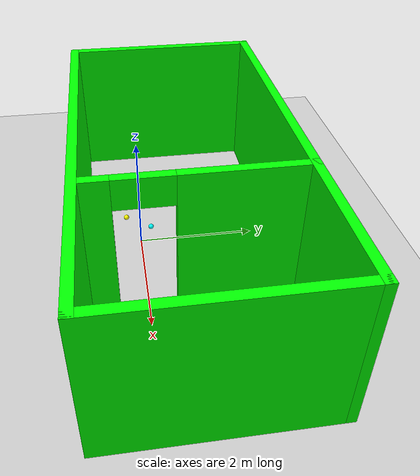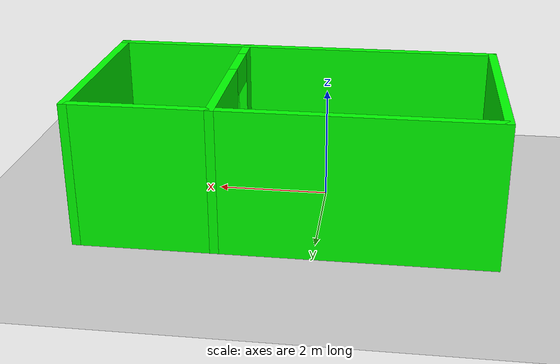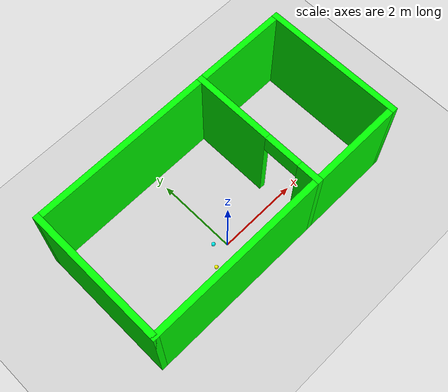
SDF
<sdf version="1.7">
 <world name="default">
  <light name="sun" type="directional">
   <pose>0 0 10 0 -0 0</pose>
   <diffuse>0.8 0.8 0.8 1</diffuse>
   <specular>0.2 0.2 0.2 1</specular>
   <attenuation>
    <range>1000</range>
    <constant>0.9</constant>
    <linear>0.01</linear>
    <quadratic>0.001</quadratic>
   </attenuation>
   <direction>-0.5 0.1 -0.9</direction>
   <spot><inner_angle>0</inner_angle><outer_angle>0</outer_angle><falloff>0</falloff></spot>
  </light>
  <model name="ground_plane">
   <static>1</static>
   <link name="link">
    <collision name="collision">
     <geometry><plane><normal>0 0 1</normal><size>100 100</size></plane></geometry>
     <surface>
      <contact><collide_bitmask>65535</collide_bitmask></contact>
      <friction><ode><mu>100</mu><mu2>50</mu2></ode></friction>
     </surface>
    </collision>
    <visual name="visual">
     <cast_shadows>0</cast_shadows>
     <geometry><plane><normal>0 0 1</normal><size>100 100</size></plane></geometry>
     <material>
      <script><uri>file://media/materials/scripts/gazebo.material</uri><name>Gazebo/Grey</name></script>
     </material>
    </visual>
   </link>
  </model>
  <gravity>0 0 -9.8</gravity>
  <magnetic_field>6e-06 2.3e-05 -4.2e-05</magnetic_field>
  <atmosphere type="adiabatic"/>
  <physics type="ode">
   <max_step_size>0.001</max_step_size>
   <real_time_factor>1</real_time_factor>
   <real_time_update_rate>1000</real_time_update_rate>
  </physics>
  <scene><ambient>0.4 0.4 0.4 1</ambient><background>0.7 0.7 0.7 1</background><shadows>1</shadows></scene>
  <spherical_coordinates>
   <surface_model>EARTH_WGS84</surface_model>
   <latitude_deg>0</latitude_deg>
   <longitude_deg>0</longitude_deg>
   <elevation>0</elevation>
   <heading_deg>0</heading_deg>
  </spherical_coordinates>
  <model name="maze">
   <pose>0.515 0.725 0 0 -0 0</pose>
   <link name="Wall_1">
    <collision name="Wall_1_Collision">
     <geometry><box><size>7 0.15 2.5</size></box></geometry>
     <pose>0 0 1.25 0 -0 0</pose>
    </collision>
    <visual name="Wall_1_Visual">
     <pose>0 0 1.25 0 -0 0</pose>
     <geometry><box><size>7 0.15 2.5</size></box></geometry>
     <material>
      <script><uri>file://media/materials/scripts/gazebo.material</uri><name>Gazebo/Grey</name></script>
      <ambient>0 1 0 0</ambient>
     </material>
     <meta><layer>0</layer></meta>
    </visual>
    <pose>0 -1.675 0 0 -0 0</pose>
   </link>
   <link name="Wall_2">
    <collision name="Wall_2_Collision">
     <geometry><box><size>3.5 0.15 2.5</size></box></geometry>
     <pose>0 0 1.25 0 -0 0</pose>
    </collision>
    <visual name="Wall_2_Visual">
     <pose>0 0 1.25 0 -0 0</pose>
     <geometry><box><size>3.5 0.15 2.5</size></box></geometry>
     <material>
      <script><uri>file://media/materials/scripts/gazebo.material</uri><name>Gazebo/Grey</name></script>
      <ambient>0 1 0 0</ambient>
     </material>
     <meta><layer>0</layer></meta>
    </visual>
    <pose>3.425 -0 0 0 -0 1.5708</pose>
   </link>
   <link name="Wall_3">
    <collision name="Wall_3_Collision">
     <geometry><box><size>7 0.15 2.5</size></box></geometry>
     <pose>0 0 1.25 0 -0 0</pose>
    </collision>
    <visual name="Wall_3_Visual">
     <pose>0 0 1.25 0 -0 0</pose>
     <geometry><box><size>7 0.15 2.5</size></box></geometry>
     <material>
      <script><uri>file://media/materials/scripts/gazebo.material</uri><name>Gazebo/Grey</name></script>
      <ambient>0 1 0 0</ambient>
     </material>
     <meta><layer>0</layer></meta>
    </visual>
    <pose>0 1.675 0 0 -0 3.14159</pose>
   </link>
   <link name="Wall_4">
    <collision name="Wall_4_Collision">
     <geometry><box><size>3.5 0.15 2.5</size></box></geometry>
     <pose>0 0 1.25 0 -0 0</pose>
    </collision>
    <visual name="Wall_4_Visual">
     <pose>0 0 1.25 0 -0 0</pose>
     <geometry><box><size>3.5 0.15 2.5</size></box></geometry>
     <material>
      <script><uri>file://media/materials/scripts/gazebo.material</uri><name>Gazebo/Grey</name></script>
      <ambient>0 1 0 0</ambient>
     </material>
     <meta><layer>0</layer></meta>
    </visual>
    <pose>-3.425 -0 0 0 -0 -1.5708</pose>
   </link>
   <link name="Wall_6">
    <pose>1.095 -0 0 0 -0 -1.5708</pose>
    <visual name="Wall_6_Visual_0">
     <pose>-0.7375 0 1.25 0 -0 0</pose>
     <geometry><box><size>2.025 0.15 2.5</size></box></geometry>
     <material>
      <script><uri>file://media/materials/scripts/gazebo.material</uri><name>Gazebo/Grey</name></script>
      <ambient>0 1 0 0</ambient>
     </material>
     <meta><layer>0</layer></meta>
    </visual>
    <collision name="Wall_6_Collision_0">
     <geometry><box><size>2.025 0.15 2.5</size></box></geometry>
     <pose>-0.7375 0 1.25 0 -0 0</pose>
    </collision>
    <visual name="Wall_6_Visual_1">
     <pose>1.4625 0 1.25 0 -0 0</pose>
     <geometry><box><size>0.575 0.15 2.5</size></box></geometry>
     <material>
      <script><uri>file://media/materials/scripts/gazebo.material</uri><name>Gazebo/Grey</name></script>
      <ambient>0 1 0 0</ambient>
     </material>
     <meta><layer>0</layer></meta>
    </visual>
    <collision name="Wall_6_Collision_1">
     <geometry><box><size>0.575 0.15 2.5</size></box></geometry>
     <pose>1.4625 0 1.25 0 -0 0</pose>
    </collision>
    <visual name="Wall_6_Visual_2">
     <pose>0.725 0 2.25 0 -0 0</pose>
     <geometry><box><size>0.9 0.15 0.5</size></box></geometry>
     <material>
      <script><uri>file://media/materials/scripts/gazebo.material</uri><name>Gazebo/Grey</name></script>
      <ambient>0 1 0 0</ambient>
     </material>
     <meta><layer>0</layer></meta>
    </visual>
    <collision name="Wall_6_Collision_2">
     <geometry><box><size>0.9 0.15 0.5</size></box></geometry>
     <pose>0.725 0 2.25 0 -0 0</pose>
    </collision>
   </link>
   <static>1</static>
  </model>
  <model name="Ball_1">
   <link name="link_1">
    <inertial>
     <mass>0.00080783</mass>
     <inertia><ixx>7e-07</ixx><ixy>0</ixy><ixz>0</ixz><iyy>7e-07</iyy><iyz>0</iyz><izz>7e-07</izz></inertia>
    </inertial>
    <pose>-0.241531 0.202851 0.125 0 -0 0</pose>
    <visual name="visual">
     <geometry><sphere><radius>0.0465731</radius></sphere></geometry>
     <material>
      <lighting>1</lighting>
      <script><uri>file://media/materials/scripts/gazebo.material</uri><name>Gazebo/Grey</name></script>
      <shader type="pixel"><normal_map>__default__</normal_map></shader>
      <ambient>0 1 1 0</ambient>
      <diffuse>0.7 0.7 0.7 1</diffuse>
      <specular>0.01 0.01 0.01 1</specular>
      <emissive>0 0 0 1</emissive>
     </material>
    </visual>
    <collision name="collision">
     <geometry><sphere><radius>0.046573</radius></sphere></geometry>
     <surface>
      <friction>
       <ode><mu>1</mu><mu2>1</mu2><fdir1>0 0 0</fdir1><slip1>0</slip1><slip2>0</slip2></ode>
       <torsional>
        <coefficient>1</coefficient>
        <patch_radius>0</patch_radius>
        <surface_radius>0</surface_radius>
        <use_patch_radius>1</use_patch_radius>
        <ode><slip>0</slip></ode>
       </torsional>
      </friction>
      <bounce><restitution_coefficient>0</restitution_coefficient><threshold>1e+06</threshold></bounce>
      <contact>
       <collide_without_contact>0</collide_without_contact>
       <collide_without_contact_bitmask>1</collide_without_contact_bitmask>
       <collide_bitmask>1</collide_bitmask>
       <ode>
        <soft_cfm>0</soft_cfm>
        <soft_erp>0.2</soft_erp>
        <kp>1e+13</kp>
        <kd>1</kd>
        <max_vel>0.01</max_vel>
        <min_depth>0</min_depth>
       </ode>
       <bullet>
        <split_impulse>1</split_impulse>
        <split_impulse_penetration_threshold>-0.01</split_impulse_penetration_threshold>
        <soft_cfm>0</soft_cfm>
        <soft_erp>0.2</soft_erp>
        <kp>1e+13</kp>
        <kd>1</kd>
       </bullet>
      </contact>
     </surface>
    </collision>
   </link>
   <static>0</static>
  </model>
  <model name="Ball_2">
   <link name="link_1_clone">
    <inertial>
     <mass>0.00080783</mass>
     <inertia><ixx>7e-07</ixx><ixy>0</ixy><ixz>0</ixz><iyy>7e-07</iyy><iyz>0</iyz><izz>7e-07</izz></inertia>
    </inertial>
    <pose>-0.575084 -0.228906 0.125 0 -0 0</pose>
    <visual name="visual">
     <geometry><sphere><radius>0.0465731</radius></sphere></geometry>
     <material>
      <lighting>1</lighting>
      <script><uri>file://media/materials/scripts/gazebo.material</uri><name>Gazebo/Grey</name></script>
      <shader type="pixel"><normal_map>__default__</normal_map></shader>
      <ambient>1 1 0 0</ambient>
      <diffuse>0.7 0.7 0.7 1</diffuse>
      <specular>0.01 0.01 0.01 1</specular>
      <emissive>0 0 0 1</emissive>
     </material>
    </visual>
    <collision name="collision">
     <geometry><sphere><radius>0.046573</radius></sphere></geometry>
     <surface>
      <friction>
       <ode><mu>1</mu><mu2>1</mu2><fdir1>0 0 0</fdir1><slip1>0</slip1><slip2>0</slip2></ode>
       <torsional>
        <coefficient>1</coefficient>
        <patch_radius>0</patch_radius>
        <surface_radius>0</surface_radius>
        <use_patch_radius>1</use_patch_radius>
        <ode><slip>0</slip></ode>
       </torsional>
      </friction>
      <bounce><restitution_coefficient>0</restitution_coefficient><threshold>1e+06</threshold></bounce>
      <contact>
       <collide_without_contact>0</collide_without_contact>
       <collide_without_contact_bitmask>1</collide_without_contact_bitmask>
       <collide_bitmask>1</collide_bitmask>
       <ode>
        <soft_cfm>0</soft_cfm>
        <soft_erp>0.2</soft_erp>
        <kp>1e+13</kp>
        <kd>1</kd>
        <max_vel>0.01</max_vel>
        <min_depth>0</min_depth>
       </ode>
       <bullet>
        <split_impulse>1</split_impulse>
        <split_impulse_penetration_threshold>-0.01</split_impulse_penetration_threshold>
        <soft_cfm>0</soft_cfm>
        <soft_erp>0.2</soft_erp>
        <kp>1e+13</kp>
        <kd>1</kd>
       </bullet>
      </contact>
     </surface>
    </collision>
   </link>
   <static>0</static>
  </model>
  <model name="Ball_3">
   <link name="link_1_clone_clone">
    <inertial>
     <mass>0.00080783</mass>
     <inertia><ixx>7e-07</ixx><ixy>0</ixy><ixz>0</ixz><iyy>7e-07</iyy><iyz>0</iyz><izz>7e-07</izz></inertia>
    </inertial>
    <pose>-1.34939 -0.55566 0.125 0 -0 0</pose>
    <visual name="visual">
     <geometry><sphere><radius>0.0465731</radius></sphere></geometry>
     <material>
      <lighting>1</lighting>
      <script><uri>file://media/materials/scripts/gazebo.material</uri><name>Gazebo/Grey</name></script>
      <shader type="pixel"><normal_map>__default__</normal_map></shader>
      <ambient>1 0 1 0</ambient>
      <diffuse>0.7 0.7 0.7 1</diffuse>
      <specular>0.01 0.01 0.01 1</specular>
      <emissive>0 0 0 1</emissive>
     </material>
    </visual>
    <collision name="collision">
     <geometry><sphere><radius>0.046573</radius></sphere></geometry>
     <surface>
      <friction>
       <ode><mu>1</mu><mu2>1</mu2><fdir1>0 0 0</fdir1><slip1>0</slip1><slip2>0</slip2></ode>
       <torsional>
        <coefficient>1</coefficient>
        <patch_radius>0</patch_radius>
        <surface_radius>0</surface_radius>
        <use_patch_radius>1</use_patch_radius>
        <ode><slip>0</slip></ode>
       </torsional>
      </friction>
      <bounce><restitution_coefficient>0</restitution_coefficient><threshold>1e+06</threshold></bounce>
      <contact>
       <collide_without_contact>0</collide_without_contact>
       <collide_without_contact_bitmask>1</collide_without_contact_bitmask>
       <collide_bitmask>1</collide_bitmask>
       <ode>
        <soft_cfm>0</soft_cfm>
        <soft_erp>0.2</soft_erp>
        <kp>1e+13</kp>
        <kd>1</kd>
        <max_vel>0.01</max_vel>
        <min_depth>0</min_depth>
       </ode>
       <bullet>
        <split_impulse>1</split_impulse>
        <split_impulse_penetration_threshold>-0.01</split_impulse_penetration_threshold>
        <soft_cfm>0</soft_cfm>
        <soft_erp>0.2</soft_erp>
        <kp>1e+13</kp>
        <kd>1</kd>
       </bullet>
      </contact>
     </surface>
    </collision>
   </link>
   <static>0</static>
  </model>
 </world>
</sdf>
